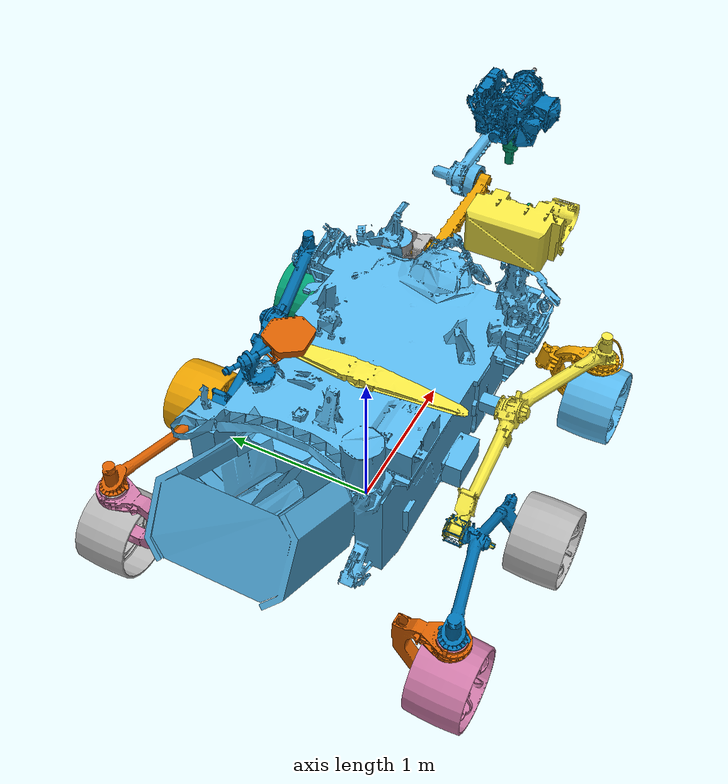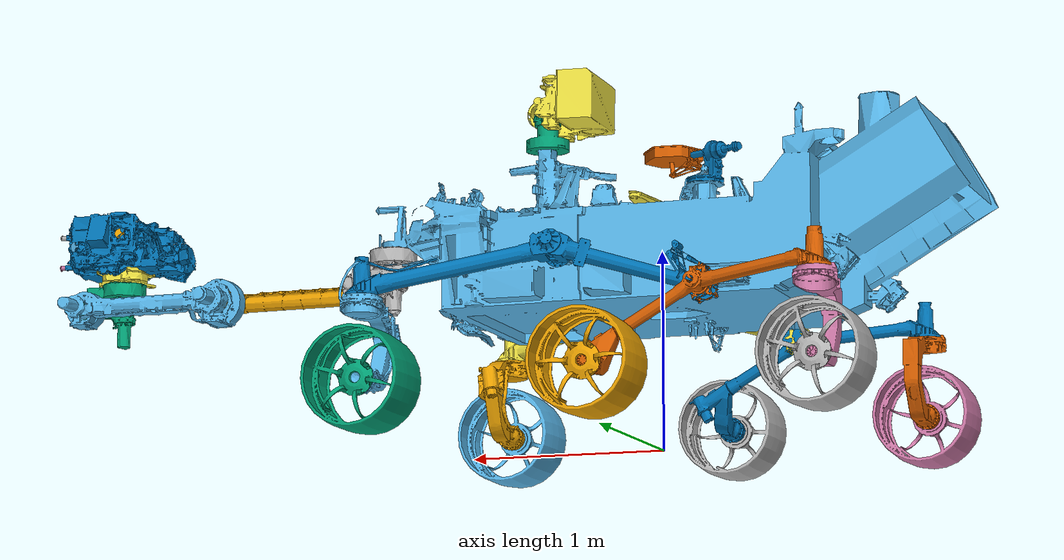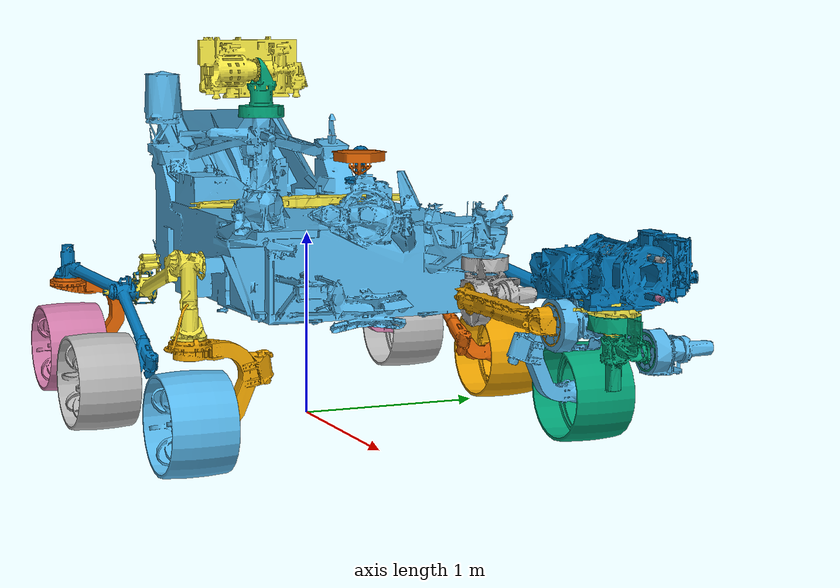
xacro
<?xml version="1.0" ?>

<!-- m2020.urdf.xacro : File that was mostly copied similar to the original, with small fixes such as changing .gtlif to .dae -->
<!-- m2020.gazebo.urdf.xacro: File that was vastly modified by TRACLabs to work with Gazebo -->
<robot name="perseverance" xmlns:xacro="http://www.ros.org/wiki/xacro">

  <!-- Set wheel MIDDLE links to be smaller, so they don't touch the floor (so we only use the front and back for diff driving)-->

  <xacro:include filename="$(find m2020_urdf_models)/urdf/gazebo/m2020.gazebo.component_macros.xacro"/>

  <xacro:property name="M_PI" value="3.14159"/>

  <xacro:property name="arm_joint_vel" value="0.6" /> <!-- original value: 1.79769e+308 -->
  <xacro:property name="head_joint_vel" value="1.0" /> <!-- original value: 1.79769e+308 -->
  <xacro:property name="arm_default_effort" value="100.0" /> <!-- original value: 1.79769e+308 -->
  <xacro:property name="stabilizer_default_vel" value="0.5"/> <!-- original value: 1.79769e+308 -->
  <xacro:property name="stabilizer_default_effort" value="50"/> <!-- original value: 1.79769e+308 -->

  <xacro:property name="arm_default_damping" value="250.0"/>
  <xacro:property name="arm_default_friction" value="10.0"/>
  <xacro:property name="default_mass" value="3.0" />
  <xacro:property name="default_ixx" value="0.2" />
  <xacro:property name="default_iyy" value="0.2" />
  <xacro:property name="default_izz" value="0.2" />

  <xacro:property name="link4_ixx" value="0.05" />
  <xacro:property name="link4_iyy" value="0.05" />
  <xacro:property name="link4_izz" value="0.05" />

  <xacro:property name="link5_ixx" value="0.05" />
  <xacro:property name="link5_iyy" value="0.05" />
  <xacro:property name="link5_izz" value="0.05" />

  <xacro:property name="stabilizer_mass" value="0.5"/>
  <xacro:property name="stabilizer_ixx" value="0.01" />
  <xacro:property name="stabilizer_iyy" value="0.01" />
  <xacro:property name="stabilizer_izz" value="0.01" />

  <xacro:property name="cap_mass" value="0.1"/>
  <xacro:property name="cap_ixx" value="0.005" />
  <xacro:property name="cap_iyy" value="0.005" />
  <xacro:property name="cap_izz" value="0.005" />

  <xacro:property name="turret_mass" value="1.0"/>
  <xacro:property name="turret_ixx" value="0.1" />
  <xacro:property name="turret_iyy" value="0.1" />
  <xacro:property name="turret_izz" value="0.1" />

  <!-- For link with no visual, no collision, just a frame -->
  <xacro:property name="tiny_mass" value="0.001"/>
  <xacro:property name="tiny_ixx" value="0.00001" />
  <xacro:property name="tiny_iyy" value="0.00001" />
  <xacro:property name="tiny_izz" value="0.00001" />

  <xacro:property name="head_damping" value="1.0"/>
  <xacro:property name="head_friction" value="10.0"/>
  <xacro:property name="head_effort" value="100.0" />

  <xacro:property name="wheel_mass" value="10.0" />
  <xacro:property name="wheel_ixx" value="${0.0254*wheel_mass}" />
  <xacro:property name="wheel_iyy" value="${0.0325*wheel_mass}" />
  <xacro:property name="wheel_izz" value="${0.0254*wheel_mass}" />

  <xacro:property name="wheel_effort" value="1000.0" />
  <xacro:property name="wheel_velocity" value="20.0" />

  <xacro:property name="wheel_radius" value="0.255" />
  <xacro:property name="wheel_width" value="0.331" />

	<link name="base_footprint"/>

	<link name="Body_Chassis">
		<inertial>
			<origin xyz="0.09002 0 -1.13338" rpy="0 -0 0"/>
			<mass value="100"/>
			<inertia ixx="0.714" ixy="0" ixz="0" iyy="2.348" iyz="0" izz="2.723"/>
		</inertial>
		<visual name="VisGeom_CHASSIS">
			<origin xyz="0.09002 0 -1.13338" rpy="0 -0 0"/>
			<geometry>
				<mesh filename="package://m2020_urdf_models/rover/meshes/CHASSIS.dae" scale="1 1 1"/>
			</geometry>
		</visual>
		<collision name="CollGeom_CHASSIS">
			<origin xyz="0.09002 0 -1.13338" rpy="0 -0 0"/>
			<geometry>
				<mesh filename="package://m2020_urdf_models/rover/meshes/low_res/CHASSIS_low_res.stl" scale="1 1 1"/>
			</geometry>
		</collision>
	</link>

	<link name="Body_MHS_DebrisShield">
	</link>
	<link name="Body_Differential">
		<inertial>
			<origin xyz="0 0 0" rpy="0 -0 0"/>
			<mass value="${default_mass}"/>
			<inertia ixx="${default_ixx}" ixy="0" ixz="0" iyy="${default_iyy}" iyz="0" izz="${default_izz}"/>
		</inertial>
		<visual name="VisGeom_CenterDifferential">
			<origin xyz="0.142 0 0" rpy="0 -0 0"/>
			<geometry>
				<mesh filename="package://m2020_urdf_models/rover/meshes/CenterDifferential.dae" scale="1 1 1"/>
			</geometry>
		</visual>
		<collision name="CollGeom_CenterDifferential">
			<origin xyz="0.142 0 0" rpy="0 -0 0"/>
			<geometry>
				<mesh filename="package://m2020_urdf_models/rover/meshes/low_res/CenterDifferential_low_res.stl" scale="1 1 1"/>
			</geometry>
		</collision>
	</link>
	<link name="Body_RockerLeft">
		<inertial>
			<origin xyz="0 0 0" rpy="0 -0 0"/>
			<mass value="${default_mass}"/>
			<inertia ixx="${default_ixx}" ixy="0" ixz="0" iyy="${default_iyy}" iyz="0" izz="${default_izz}"/>
		</inertial>
		<visual name="VisGeom_Left_Rocker">
			<origin xyz="-0.214 0.79959 -0.2405" rpy="0 -0 0"/>
			<geometry>
				<mesh filename="package://m2020_urdf_models/rover/meshes/Left_Rocker.dae" scale="1 1 1"/>
			</geometry>
		</visual>
		<collision name="CollGeom_Left_Rocker">
			<origin xyz="-0.214 0.79959 -0.2405" rpy="0 -0 0"/>
			<geometry>
				<mesh filename="package://m2020_urdf_models/rover/meshes/low_res/Left_Rocker_low_res.stl" scale="1 1 1"/>
			</geometry>
		</collision>
	</link>
	<link name="Body_BogieLeft">
		<inertial>
			<origin xyz="0.0 0 0" rpy="0 -0 0"/>
			<mass value="${default_mass}"/>
			<inertia ixx="${default_ixx}" ixy="0" ixz="0" iyy="${default_iyy}" iyz="0" izz="${default_izz}"/>
		</inertial>
		<visual name="VisGeom_Left_Bogie">
			<origin xyz="0.54 0.91959 -0.4705" rpy="0 -0 0"/>
			<geometry>
				<mesh filename="package://m2020_urdf_models/rover/meshes/Left_Bogie.dae" scale="1 1 1"/>
			</geometry>
		</visual>
		<collision name="CollGeom_Left_Bogie">
			<origin xyz="0.54 0.91959 -0.4705" rpy="0 -0 0"/>
			<geometry>
				<mesh filename="package://m2020_urdf_models/rover/meshes/low_res/Left_Bogie_low_res.stl" scale="1 1 1"/>
			</geometry>
		</collision>
	</link>
	<link name="Body_SteerLeftRear">
		<inertial>
			<origin xyz="0 0 0" rpy="0 -0 0"/>
			<mass value="${default_mass}"/>
			<inertia ixx="${default_ixx}" ixy="0" ixz="0" iyy="${default_iyy}" iyz="0" izz="${default_izz}"/>
		</inertial>
		<visual name="VisGeom_Steer_LeftRear">
			<origin xyz="1.165 1.0625 -0.8705" rpy="0 -0 0"/>
			<geometry>
				<mesh filename="package://m2020_urdf_models/rover/meshes/Steer_LeftRear.dae" scale="1 1 1"/>
			</geometry>
		</visual>
		<collision name="CollGeom_Steer_LeftRear">
			<origin xyz="1.165 1.0625 -0.8705" rpy="0 -0 0"/>
			<geometry>
				<mesh filename="package://m2020_urdf_models/rover/meshes/low_res/Steer_LeftRear_low_res.stl" scale="1 1 1"/>
			</geometry>
		</collision>
	</link>
	<link name="Body_WheelLeftRear">
		<inertial>
			<origin xyz="0 0 0" rpy="0 0 0"/>
			<mass value="${wheel_mass}"/>
			<inertia ixx="${wheel_ixx}" ixy="0" ixz="0" iyy="${wheel_iyy}" iyz="0" izz="${wheel_izz}"/>
		</inertial>
		<visual name="VisGeom_Wheel_LeftRear">
			<origin xyz="1.165 1.0625 -0.8705" rpy="0 -0 0"/>
			<geometry>
				<mesh filename="package://m2020_urdf_models/rover/meshes/Wheel_LeftRear.dae" scale="1 1 1"/>
			</geometry>
		</visual>
		<collision name="ColGeom_Wheel_LeftRear">
          <origin xyz="0 0 0" rpy="${M_PI/2} 0 0" />
          <geometry>
            <cylinder radius="${wheel_radius-0.0001}" length="${wheel_width}"/>
          </geometry>
		</collision>
	</link>
	<link name="Body_WheelLeftMiddle">
		<inertial>
			<origin xyz="0 0 0" rpy="0 -0 0"/>
			<mass value="${wheel_mass}"/>
			<inertia ixx="${wheel_ixx}" ixy="0" ixz="0" iyy="${wheel_iyy}" iyz="0" izz="${wheel_izz}"/>
		</inertial>
		<visual name="VisGeom_Wheel_LeftMiddle">
			<origin xyz="0.09002 1.1845 -0.8705" rpy="0 -0 0"/>
			<geometry>
				<mesh filename="package://m2020_urdf_models/rover/meshes/Wheel_LeftMiddle.dae" scale="1 1 1"/>
			</geometry>
		</visual>
		<collision name="ColGeom_Wheel_LeftMiddle">
          <origin xyz="0 0 0" rpy="${M_PI/2} 0 0" />
          <geometry>
            <cylinder radius="${wheel_radius-0.0001}" length="${wheel_width}"/>
          </geometry>
		</collision>
	</link>
	<link name="Body_SteerLeftFront">
		<inertial>
			<origin xyz="-1.095 1.0625 -0.8705" rpy="0 -0 0"/>
			<mass value="${default_mass}"/>
			<inertia ixx="${default_ixx}" ixy="0" ixz="0" iyy="${default_iyy}" iyz="0" izz="${default_izz}"/>
		</inertial>
		<visual name="VisGeom_Steer_LeftFront">
			<origin xyz="-1.095 1.0625 -0.8705" rpy="0 -0 0"/>
			<geometry>
				<mesh filename="package://m2020_urdf_models/rover/meshes/Steer_LeftFront.dae" scale="1 1 1"/>
			</geometry>
		</visual>
		<collision name="CollGeom_Steer_LeftFront">
			<origin xyz="-1.095 1.0625 -0.8705" rpy="0 -0 0"/>
			<geometry>
				<mesh filename="package://m2020_urdf_models/rover/meshes/low_res/Steer_LeftFront_low_res.stl" scale="1 1 1"/>
			</geometry>
		</collision>
	</link>
	<link name="Body_WheelLeftFront">
		<inertial>
			<origin xyz="0 0 0" rpy="0 -0 0"/>
			<mass value="${wheel_mass}"/>
			<inertia ixx="${wheel_ixx}" ixy="0" ixz="0" iyy="${wheel_iyy}" iyz="0" izz="${wheel_izz}"/>
		</inertial>
		<visual name="VisGeom_Wheel_LeftFront">
			<origin xyz="-1.095 1.0625 -0.8705" rpy="0 -0 0"/>
			<geometry>
				<mesh filename="package://m2020_urdf_models/rover/meshes/Wheel_LeftFront.dae" scale="1 1 1"/>
			</geometry>
		</visual>
		<collision name="ColGeom_Wheel_LeftFront">
          <origin xyz="0 0 0" rpy="${M_PI/2} 0 0" />
          <geometry>
            <cylinder radius="${wheel_radius-0.0001}" length="${wheel_width}"/>
          </geometry>
		</collision>
	</link>
	<link name="Body_RockerRight">
		<inertial>
			<origin xyz="0 0 0" rpy="0 0 0"/>
			<mass value="${default_mass}"/>
			<inertia ixx="${default_ixx}" ixy="0" ixz="0" iyy="${default_iyy}" iyz="0" izz="${default_izz}"/>
		</inertial>
		<visual name="VisGeom_Right_Rocker">
			<origin xyz="-0.214 -0.79959 -0.2405" rpy="0 -0 0"/>
			<geometry>
				<mesh filename="package://m2020_urdf_models/rover/meshes/Right_Rocker.dae" scale="1 1 1"/>
			</geometry>
		</visual>
		<collision name="ColGeom_Right_Rocker">
			<origin xyz="-0.214 -0.79959 -0.2405" rpy="0 -0 0"/>
			<geometry>
				<mesh filename="package://m2020_urdf_models/rover/meshes/low_res/Right_Rocker_low_res.stl" scale="1 1 1"/>
			</geometry>
		</collision>

	</link>
	<link name="Body_BogieRight">
		<inertial>
			<origin xyz="0 0 0" rpy="0 0 0"/>
			<mass value="${default_mass}"/>
			<inertia ixx="${default_ixx}" ixy="0" ixz="0" iyy="${default_iyy}" iyz="0" izz="${default_izz}"/>
		</inertial>
		<visual name="VisGeom_Right_Bogie">
			<origin xyz="0.54 -0.91959 -0.4705" rpy="0 -0 0"/>
			<geometry>
				<mesh filename="package://m2020_urdf_models/rover/meshes/Right_Bogie.dae" scale="1 1 1"/>
			</geometry>
		</visual>
		<collision name="ColGeom_Right_Bogie">
			<origin xyz="0.54 -0.91959 -0.4705" rpy="0 -0 0"/>
			<geometry>
				<mesh filename="package://m2020_urdf_models/rover/meshes/low_res/Right_Bogie_low_res.stl" scale="1 1 1"/>
			</geometry>
		</collision>
	</link>
	<link name="Body_SteerRightRear">
		<inertial>
			<origin xyz="0 0 0" rpy="0 0 0"/>
			<mass value="${default_mass}"/>
			<inertia ixx="${default_ixx}" ixy="0" ixz="0" iyy="${default_iyy}" iyz="0" izz="${default_izz}"/>
		</inertial>
		<visual name="VisGeom_Steer_RightRear">
			<origin xyz="1.165 -1.0625 -0.8705" rpy="0 -0 0"/>
			<geometry>
				<mesh filename="package://m2020_urdf_models/rover/meshes/Steer_RightRear.dae" scale="1 1 1"/>
			</geometry>
		</visual>
		<collision name="CollGeom_Steer_RightRear">
			<origin xyz="1.165 -1.0625 -0.8705" rpy="0 -0 0"/>
			<geometry>
				<mesh filename="package://m2020_urdf_models/rover/meshes/low_res/Steer_RightRear_low_res.stl" scale="1 1 1"/>
			</geometry>
		</collision>
	</link>
	<link name="Body_WheelRightRear">
		<inertial>
			<origin xyz="0 0 0" rpy="0 -0 0"/>
			<mass value="${wheel_mass}"/>
			<inertia ixx="${wheel_ixx}" ixy="0" ixz="0" iyy="${wheel_iyy}" iyz="0" izz="${wheel_izz}"/>
		</inertial>
		<visual name="VisGeom_Wheel_RightRear">
			<origin xyz="1.165 -1.0625 -0.8705" rpy="0 -0 0"/>
			<geometry>
				<mesh filename="package://m2020_urdf_models/rover/meshes/Wheel_RightRear.dae" scale="1 1 1"/>
			</geometry>
		</visual>
		<collision name="ColGeom_Wheel_RightRear">
          <origin xyz="0 0 0" rpy="${M_PI/2} 0 0" />
          <geometry>
            <cylinder radius="${wheel_radius-0.0001}" length="${wheel_width}"/>
          </geometry>
		</collision>
	</link>
	<link name="Body_WheelRightMiddle">
		<inertial>
			<origin xyz="0 0 0" rpy="0 -0 0"/>
			<mass value="${wheel_mass}"/>
			<inertia ixx="${wheel_ixx}" ixy="0" ixz="0" iyy="${wheel_iyy}" iyz="0" izz="${wheel_izz}"/>
		</inertial>
		<visual name="VisGeom_Wheel_RightMiddle">
			<origin xyz="0.09002 -1.1845 -0.8705" rpy="0 -0 0"/>
			<geometry>
				<mesh filename="package://m2020_urdf_models/rover/meshes/Wheel_RightMiddle.dae" scale="1 1 1"/>
			</geometry>
		</visual>
		<collision name="ColGeom_Wheel_RightMiddle">
          <origin xyz="0 0 0" rpy="${M_PI/2} 0 0" />
          <geometry>
            <cylinder radius="${wheel_radius-0.0001}" length="${wheel_width}"/>
          </geometry>
		</collision>
	</link>
	<link name="Body_SteerRightFront">
		<inertial>
			<origin xyz="0 0 0" rpy="0 -0 0"/>
			<mass value="${default_mass}"/>
			<inertia ixx="${default_ixx}" ixy="0" ixz="0" iyy="${default_iyy}" iyz="0" izz="${default_izz}"/>
		</inertial>
		<visual name="VisGeom_Steer_RightFront">
			<origin xyz="-1.095 -1.0625 -0.8705" rpy="0 -0 0"/>
			<geometry>
				<mesh filename="package://m2020_urdf_models/rover/meshes/Steer_RightFront.dae" scale="1 1 1"/>
			</geometry>
		</visual>
		<collision name="CollGeom_Steer_RightFront">
			<origin xyz="-1.095 -1.0625 -0.8705" rpy="0 -0 0"/>
			<geometry>
				<mesh filename="package://m2020_urdf_models/rover/meshes/low_res/Steer_RightFront_low_res.stl" scale="1 1 1"/>
			</geometry>
		</collision>
	</link>
	<link name="Body_WheelRightFront">
		<inertial>
			<origin xyz="0 0 0" rpy="0 -0 0"/>
			<mass value="${wheel_mass}"/>
			<inertia ixx="${wheel_ixx}" ixy="0" ixz="0" iyy="${wheel_iyy}" iyz="0" izz="${wheel_izz}"/>
		</inertial>
		<visual name="VisGeom_Wheel_RightFront">
			<origin xyz="-1.095 -1.0625 -0.8705" rpy="0 -0 0"/>
			<geometry>
				<mesh filename="package://m2020_urdf_models/rover/meshes/Wheel_RightFront.dae" scale="1 1 1"/>
			</geometry>
		</visual>
		<collision name="ColGeom_Wheel_RightFront">
          <origin xyz="0 0 0" rpy="${M_PI/2} 0 0" />
          <geometry>
            <cylinder radius="${wheel_radius-0.0001}" length="${wheel_width}"/>
          </geometry>
		</collision>
	</link>
	<link name="Body_RSM_AZ">
		<inertial>
			<origin xyz="0 0 0" rpy="0 -0 0"/>
			<mass value="${default_mass}"/>
			<inertia ixx="${default_ixx}" ixy="0" ixz="0" iyy="${default_iyy}" iyz="0" izz="${default_izz}"/>
		</inertial>
		<visual name="VisGeom_RSM">
			<origin xyz="-0.714017 -0.559028 0.78589" rpy="0 -0 0"/>
			<geometry>
				<mesh filename="package://m2020_urdf_models/rover/meshes/RSM.dae" scale="1 1 1"/>
			</geometry>
		</visual>
		<collision name="CollGeom_RSM">
			<origin xyz="-0.714017 -0.559028 0.78589" rpy="0 -0 0"/>
			<geometry>
				<mesh filename="package://m2020_urdf_models/rover/meshes/low_res/RSM_low_res.stl" scale="1 1 1"/>
			</geometry>
		</collision>
	</link>
	<link name="Body_RSM_EL">
		<inertial>
			<origin xyz="0 0 0" rpy="0 -0 0"/>
			<mass value="${default_mass}"/>
			<inertia ixx="${default_ixx}" ixy="0" ixz="0" iyy="${default_iyy}" iyz="0" izz="${default_izz}"/>
		</inertial>
		<visual name="VisGeom_RSM_HEAD">
			<origin xyz="-0.714017 -0.559028 0.78589" rpy="0 -0 0"/>
			<geometry>
				<mesh filename="package://m2020_urdf_models/rover/meshes/RSM_Head.dae" scale="1 1 1"/>
			</geometry>
		</visual>
		<collision name="CollGeom_RSM_HEAD">
			<origin xyz="-0.714017 -0.559028 0.78589" rpy="0 -0 0"/>
			<geometry>
				<mesh filename="package://m2020_urdf_models/rover/meshes/low_res/RSM_Head_low_res.stl" scale="1 1 1"/>
			</geometry>
		</collision>
	</link>
	<link name="Body_HGA_AZ">
		<inertial>
			<origin xyz="0 0 0" rpy="0 0 0"/>
			<mass value="${default_mass}"/>
			<inertia ixx="${default_ixx}" ixy="0" ixz="0" iyy="${default_iyy}" iyz="0" izz="${default_izz}"/>
		</inertial>
		<visual name="VisGeom_HGA_AZ">
			<origin xyz="0.46 0.475 -0.0005" rpy="0 -0 0"/>
			<geometry>
				<mesh filename="package://m2020_urdf_models/rover/meshes/HGA_AZ.dae" scale="1 1 1"/>
			</geometry>
		</visual>
		<collision name="CollGeom_HGA_AZ">
			<origin xyz="0.46 0.475 -0.0005" rpy="0 -0 0"/>
			<geometry>
				<mesh filename="package://m2020_urdf_models/rover/meshes/low_res/HGA_AZ_low_res.stl" scale="1 1 1"/>
			</geometry>
		</collision>
	</link>
	<link name="Body_HGA_EL">
		<inertial>
			<origin xyz="0 0 0" rpy="0 0 0"/>
			<mass value="${default_mass}"/>
			<inertia ixx="${default_ixx}" ixy="0" ixz="0" iyy="${default_iyy}" iyz="0" izz="${default_izz}"/>
		</inertial>
		<visual name="VisGeom_HGA_EL">
			<origin xyz="0.46 0.475 0.2475" rpy="0 -0 0"/>
			<geometry>
				<mesh filename="package://m2020_urdf_models/rover/meshes/HGA_EL.dae" scale="1 1 1"/>
			</geometry>
		</visual>
		<collision name="CollGeom_HGA_EL">
			<origin xyz="0.46 0.475 0.2475" rpy="0 -0 0"/>
			<geometry>
				<mesh filename="package://m2020_urdf_models/rover/meshes/low_res/HGA_EL_low_res.stl" scale="1 1 1"/>
			</geometry>
		</collision>
	</link>
	<link name="Body_RA_Base">
		<inertial>
			<origin xyz="0 0 0" rpy="0 0 0"/>
			<mass value="${tiny_mass}"/>
			<inertia ixx="${tiny_ixx}" ixy="0" ixz="0" iyy="${tiny_iyy}" iyz="0" izz="${tiny_izz}"/>
		</inertial>
	</link>
	<link name="Body_RA_Link1">
		<inertial>
			<origin xyz="0 0 0" rpy="0 0 0"/>
			<mass value="${default_mass}"/>
			<inertia ixx="${default_ixx}" ixy="0" ixz="0" iyy="${default_iyy}" iyz="0" izz="${default_izz}"/>
		</inertial>
		<visual name="VisGeom_Arm_LINK_1">
			<origin xyz="-1.1756 0.4515 -0.3116" rpy="0 -0 0"/>
			<geometry>
				<mesh filename="package://m2020_urdf_models/rover/meshes/Arm_LINK_1.dae" scale="1 1 1"/>
			</geometry>
		</visual>
		<collision name="ColGeom_Arm_LINK_1">
			<origin xyz="-1.1756 0.4515 -0.3116" rpy="0 -0 0"/>
			<geometry>
				<mesh filename="package://m2020_urdf_models/rover/meshes/low_res/Arm_LINK_1_low_res.stl" scale="1 1 1"/>
			</geometry>
		</collision>
	</link>
	<link name="Body_RA_Link2">
		<inertial>
			<origin xyz="0 0 0" rpy="0 -0 0"/>
			<mass value="${default_mass}"/>
			<inertia ixx="${default_ixx}" ixy="0" ixz="0" iyy="${default_iyy}" iyz="0" izz="${default_izz}"/>
		</inertial>
		<visual name="VisGeom_Arm_LINK_2">
			<origin xyz="-1.3416 0.4515 -0.3116" rpy="0 -0 0"/>
			<geometry>
				<mesh filename="package://m2020_urdf_models/rover/meshes/Arm_LINK_2.dae" scale="1 1 1"/>
			</geometry>
		</visual>
		<collision name="ColGeom_Arm_LINK_2">
			<origin xyz="-1.3416 0.4515 -0.3116" rpy="0 -0 0"/>
			<geometry>
				<mesh filename="package://m2020_urdf_models/rover/meshes/low_res/Arm_LINK_2_low_res.stl" scale="1 1 1"/>
			</geometry>
		</collision>
	</link>
	<link name="Body_RA_Link3">
		<inertial>
			<origin xyz="0 0 0" rpy="0 0 0"/>
			<mass value="${default_mass}"/>
			<inertia ixx="0.1" ixy="0" ixz="0" iyy="0.1" iyz="0" izz="0.1"/>
		</inertial>
		<visual name="VisGeom_Arm_LINK_3">
			<origin xyz="-2.161 0.4515 -0.3116" rpy="0 -0 0"/>
			<geometry>
				<mesh filename="package://m2020_urdf_models/rover/meshes/Arm_LINK_3.dae" scale="1 1 1"/>
			</geometry>
		</visual>
		<collision name="ColGeom_Arm_LINK_3">
			<origin xyz="-2.161 0.4515 -0.3116" rpy="0 -0 0"/>
			<geometry>
				<mesh filename="package://m2020_urdf_models/rover/meshes/low_res/Arm_LINK_3_low_res.stl" scale="1 1 1"/>
			</geometry>
		</collision>
	</link>
	<link name="Body_RA_Link4">
		<inertial>
			<origin xyz="0 0 0" rpy="0 0 0"/>
			<mass value="${default_mass}"/>
			<inertia ixx="${link4_ixx}" ixy="0" ixz="0" iyy="${link4_iyy}" iyz="0" izz="${link4_izz}"/>
		</inertial>
		<visual name="VisGeom_Arm_LINK_4">
			<origin xyz="-2.9143 0.4515 -0.3116" rpy="0 -0 0"/>
			<geometry>
				<mesh filename="package://m2020_urdf_models/rover/meshes/Arm_LINK_4.dae" scale="1 1 1"/>
			</geometry>
		</visual>
		<collision name="ColGeom_Arm_LINK_4">
			<origin xyz="-2.9143 0.4515 -0.3116" rpy="0 -0 0"/>
			<geometry>
				<mesh filename="package://m2020_urdf_models/rover/meshes/low_res/Arm_LINK_4_low_res.stl" scale="1 1 1"/>
			</geometry>
		</collision>
	</link>
	<link name="Body_RA_Link5">
	    <inertial>
			<origin xyz="0 0 0" rpy="0 0 0"/>
			<mass value="${default_mass}"/>
			<inertia ixx="${link5_ixx}" ixy="0" ixz="0" iyy="${link5_iyy}" iyz="0" izz="${link5_izz}"/>
		</inertial>
		<visual name="VisGeom_Arm_LINK_5">
			<origin xyz="-2.7386 0.2724 -0.3116" rpy="0 -0 0"/>
			<geometry>
				<mesh filename="package://m2020_urdf_models/rover/meshes/Arm_LINK_5.dae" scale="1 1 1"/>
			</geometry>
		</visual>
		<collision name="CollGeom_Arm_LINK_5">
			<origin xyz="-2.7386 0.2724 -0.3116" rpy="0 -0 0"/>
			<geometry>
				<mesh filename="package://m2020_urdf_models/rover/meshes/low_res/Arm_LINK_5_low_res.stl" scale="1 1 1"/>
			</geometry>
		</collision>
	</link>
	<link name="Body_Turret">
		<inertial>
			<origin xyz="0 0 0" rpy="0 0 0"/>
			<mass value="${turret_mass}"/>
			<inertia ixx="${turret_ixx}" ixy="0" ixz="0" iyy="${turret_iyy}" iyz="0" izz="${turret_izz}"/>
		</inertial>
		<visual name="VisGeom_Turret">
			<origin xyz="0 0 0" rpy="0 -0 0"/>
			<geometry>
				<mesh filename="package://m2020_urdf_models/rover/meshes/Turret.dae" scale="1 1 1"/>
			</geometry>
		</visual>
		<collision name="ColGeom_Turret">
			<origin xyz="0 0 0" rpy="0 -0 0"/>
			<geometry>
				<mesh filename="package://m2020_urdf_models/rover/meshes/low_res/Turret_low_res.stl" scale="1 1 1"/>
			</geometry>
		</collision>
	</link>
	<link name="Body_CorerFeed">
		<!-- Commented out TRACLabs -->
		<!-- Commented out TRACLabs -->
	</link>
	<link name="Body_StabilizerFar">
		<inertial>
			<origin xyz="0 0 0" rpy="0 0 0"/>
			<mass value="${stabilizer_mass}"/>
			<inertia ixx="${stabilizer_ixx}" ixy="0" ixz="0" iyy="${stabilizer_iyy}" iyz="0" izz="${stabilizer_izz}"/>
		</inertial>
		<visual name="VisGeom_StabilizerFar">
			<origin xyz="0.208499 -5.1e-05 -3.438e-05" rpy="0 -0 0"/>
			<geometry>
				<mesh filename="package://m2020_urdf_models/rover/meshes/StabilizerFarInTurret.dae" scale="1 1 1"/>
			</geometry>
		</visual>
		<collision name="CollGeom_StabilizerFar">
			<origin xyz="0.208499 -5.1e-05 -3.438e-05" rpy="0 -0 0"/>
			<geometry>
				<mesh filename="package://m2020_urdf_models/rover/meshes/low_res/StabilizerFarInTurret_low_res.stl" scale="1 1 1"/>
			</geometry>
		</collision>
	</link>
	<link name="Body_StabilizerNear">
		<inertial>
			<origin xyz="0 0 0" rpy="0 -0 0"/>
			<mass value="${stabilizer_mass}"/>
			<inertia ixx="${stabilizer_ixx}" ixy="0" ixz="0" iyy="${stabilizer_iyy}" iyz="0" izz="${stabilizer_izz}"/>
		</inertial>
		<visual name="VisGeom_StabilizerNear">
			<origin xyz="0.208499 -5.1e-05 -3.438e-05" rpy="0 -0 0"/>
			<geometry>
				<mesh filename="package://m2020_urdf_models/rover/meshes/StabilizerNearInTurret.dae" scale="1 1 1"/>
			</geometry>
		</visual>
		<collision name="CollGeom_StabilizerNear">
			<origin xyz="0.208499 -5.1e-05 -3.438e-05" rpy="0 -0 0"/>
			<geometry>
				<mesh filename="package://m2020_urdf_models/rover/meshes/low_res/StabilizerNearInTurret_low_res.stl" scale="1 1 1"/>
			</geometry>
		</collision>
	</link>
	<link name="Body_WATSON_Cap">
		<inertial>
			<origin xyz="0 0 0" rpy="0 0 0"/>
			<mass value="${cap_mass}"/>
			<inertia ixx="${cap_ixx}" ixy="0" ixz="0" iyy="${cap_iyy}" iyz="0" izz="${cap_izz}"/>
		</inertial>
		<visual name="VisGeom_WATSON_Cap">
			<origin xyz="-2.6025 0.581204 0.0309103" rpy="0 -0 0"/>
			<geometry>
				<mesh filename="package://m2020_urdf_models/rover/meshes/WATSON_Camera_Cap.dae" scale="1 1 1"/>
			</geometry>
		</visual>
		<collision name="CollGeom_WATSON_Cap">
			<origin xyz="-2.6025 0.581204 0.0309103" rpy="0 -0 0"/>
			<geometry>
				<mesh filename="package://m2020_urdf_models/rover/meshes/low_res/WATSON_Camera_Cap_low_res.stl" scale="1 1 1"/>
			</geometry>
		</collision>
	</link>
	<link name="Body_SHERLOC_Cap">
		<inertial>
			<origin xyz="0 0 0" rpy="0 0 0"/>
			<mass value="${cap_mass}"/>
			<inertia ixx="${cap_ixx}" ixy="0" ixz="0" iyy="${cap_iyy}" iyz="0" izz="${cap_izz}"/>
		</inertial>
		<visual name="VisGeom_SHERLOC_Cap">
			<origin xyz="-2.86084 0.58439 -0.0124626" rpy="0 -0 0"/>
			<geometry>
				<mesh filename="package://m2020_urdf_models/rover/meshes/ContextImager_Cap.dae" scale="1 1 1"/>
			</geometry>
		</visual>
		<collision name="CollGeom_SHERLOC_Cap">
			<origin xyz="-2.86084 0.58439 -0.0124626" rpy="0 -0 0"/>
			<geometry>
				<mesh filename="package://m2020_urdf_models/rover/meshes/low_res/ContextImager_Cap_low_res.stl" scale="1 1 1"/>
			</geometry>
		</collision>
	</link>
	<link name="Frame_RNAV"/>
	<link name="Frame_RMECH"/>
	<link name="Frame_FHCB"/>
	<link name="Frame_FHC1"/>
	<link name="Frame_FHC2"/>
	<link name="Frame_FHC3"/>
	<link name="Frame_FHC4"/>
	<link name="Frame_FHC1_FOV"/>
	<link name="Frame_FHC2_FOV"/>
	<link name="Frame_FHC3_FOV"/>
	<link name="Frame_FHC4_FOV"/>
	<link name="Frame_RHC1"/>
	<link name="Frame_RHC2"/>
	<link name="Frame_RHC1_FOV"/>
	<link name="Frame_RHC2_FOV"/>
	<link name="Frame_ATS1"/>
	<link name="Frame_ATS2"/>
	<link name="Frame_ATS3"/>
	<link name="Frame_ATS4"/>
	<link name="Frame_ATS5"/>
	<link name="Frame_HS"/>
	<link name="Frame_ICU"/>
	<link name="Frame_RDS"/>
	<link name="Frame_TIRS"/>
	<link name="Frame_WS1"/>
	<link name="Frame_WS2"/>
	<link name="Frame_MOXIE"/>
	<link name="Frame_MI"/>
	<link name="Frame_MAZ"/>
	<link name="Frame_MEL"/>
	<link name="Frame_SCI"/>
	<link name="Frame_SCRMI"/>
	<link name="Frame_SCLIBS"/>
	<link name="Frame_SCIR"/>
	<link name="Frame_MCL"/>
	<link name="Frame_MCR"/>
	<link name="Frame_NCL"/>
	<link name="Frame_NCR"/>
	<link name="Frame_NCL_FOV"/>
	<link name="Frame_NCR_FOV"/>
	<link name="Frame_ROCKER_L"/>
	<link name="Frame_ROCKER_R"/>
	<link name="Frame_BOGIE_L"/>
	<link name="Frame_BOGIE_R"/>
	<link name="Frame_DIFF"/>
	<link name="Frame_STEER_LF"/>
	<link name="Frame_STEER_LR"/>
	<link name="Frame_STEER_RF"/>
	<link name="Frame_STEER_RR"/>
	<link name="Frame_WHEEL_LF"/>
	<link name="Frame_WHEEL_LM"/>
	<link name="Frame_WHEEL_LR"/>
	<link name="Frame_WHEEL_RF"/>
	<link name="Frame_WHEEL_RM"/>
	<link name="Frame_WHEEL_RR"/>
	<link name="Frame_RIMUA"/>
	<link name="Frame_RIMUB"/>
	<link name="Frame_RIMFAX"/>
	<link name="Frame_HGAS"/>
	<link name="Frame_HGAG"/>
	<link name="Frame_ANT"/>
	<link name="Frame_RA_BASE"/>
	<link name="Frame_RA1"/>
	<link name="Frame_RA2"/>
	<link name="Frame_RA3"/>
	<link name="Frame_RA4"/>
	<link name="Frame_RA5"/>
	<link name="Frame_RA6"/>
	<link name="Frame_TURRET"/>
	<link name="Frame_DOCKING_POST"/>
	<link name="Frame_DRILL"/>
	<link name="Frame_FCS"/>
	<link name="Frame_GDRT"/>
	<link name="Frame_PIXL"/>
	<link name="Frame_SHERLOC"/>
	<link name="Frame_WATSON"/>
	<link name="Frame_CAL_MC1"/>
	<link name="Frame_CAL_MC2"/>
	<link name="Frame_CAL_SC"/>
	<link name="Frame_CAL_PIXL"/>
	<link name="Frame_CAL_SHERLOC"/>

    <!-- *************** Joints ************ -->

	<joint name="joint_footprint" type="fixed">
		<origin xyz="0 0 0" rpy="3.1416 0 0"/>
		<parent link="base_footprint"/>
		<child link="Body_Chassis"/>
	</joint>

	<joint name="Joint_MHS_DebrisShield" type="fixed"> <!-- TRACLABS Note: This was floating. We set it to fixed for easy sim-->
		<origin xyz="0.09002 0 -1.13338" rpy="0 -0 0"/>
		<parent link="Body_Chassis"/>
		<child link="Body_MHS_DebrisShield"/>
	</joint>
	<joint name="CENTER_DIFFERENTIAL" type="fixed"> <!-- TRACLabs Gazebo test hack -->
		<origin xyz="-0.05198 0 -1.13338" rpy="0 -0 0"/>
		<parent link="Body_Chassis"/>
		<child link="Body_Differential"/>
		<axis xyz="0 0 1"/>
		<limit lower="-1.79769e+308" upper="1.79769e+308" effort="1.79769e+308" velocity="1.79769e+308"/>
	</joint>
	<joint name="LEFT_DIFFERENTIAL" type="fixed"> <!-- TRACLabs Gazebo test hack -->
		<origin xyz="0.30402 -0.79959 -0.89288" rpy="0 -0 0"/>
		<parent link="Body_Chassis"/>
		<child link="Body_RockerLeft"/>
		<axis xyz="0 1 0"/>
		<limit lower="-1.79769e+308" upper="1.79769e+308" effort="1.79769e+308" velocity="1.79769e+308"/>
	</joint>
	<joint name="LEFT_BOGIE" type="fixed"> <!-- TRACLabs Gazebo test hack -->
		<origin xyz="-0.754 -0.12 0.23" rpy="0 -0 0"/>
		<parent link="Body_RockerLeft"/>
		<child link="Body_BogieLeft"/>
		<axis xyz="0 1 0"/>
		<limit lower="-1.79769e+308" upper="1.79769e+308" effort="1.79769e+308" velocity="1.79769e+308"/>
	</joint>
	<joint name="LR_STEER" type="fixed"> <!-- TRACLabs Gazebo test hack -->
		<origin xyz="-0.625 -0.14291 0.4" rpy="0 -0 0"/>
		<parent link="Body_BogieLeft"/>
		<child link="Body_SteerLeftRear"/>
		<axis xyz="0 0 1"/>
		<limit lower="-1.79769e+308" upper="1.79769e+308" effort="1.79769e+308" velocity="1.79769e+308"/>
	</joint>
	<joint name="LR_DRIVE" type="continuous"> <!-- revolute TRACLabs Gazebo test hack -->
		<origin xyz="0 0 0" rpy="0 -0 0"/>
		<parent link="Body_SteerLeftRear"/>
		<child link="Body_WheelLeftRear"/>
		<axis xyz="0 -1 0"/>
		<limit effort="${wheel_effort}" velocity="${wheel_velocity}"/>
		<dynamics damping="0.0" friction="0.0" />
	</joint>
	<joint name="LM_DRIVE" type="continuous"> <!-- revolute TRACLabs Gazebo test hack -->
		<origin xyz="0.44998 -0.26491 0.4" rpy="0 -0 0"/>
		<parent link="Body_BogieLeft"/>
		<child link="Body_WheelLeftMiddle"/>
		<axis xyz="0 -1 0"/>
		<limit effort="${wheel_effort}" velocity="${wheel_velocity}"/>
		<dynamics damping="0.0" friction="0.0" />
	</joint>
	<joint name="LF_STEER" type="fixed"> <!-- TRACLabs Gazebo test hack -->
		<origin xyz="0.881 -0.26291 0.63" rpy="0 -0 0"/>
		<parent link="Body_RockerLeft"/>
		<child link="Body_SteerLeftFront"/>
		<axis xyz="0 0 1"/>
		<limit lower="-1.79769e+308" upper="1.79769e+308" effort="1.79769e+308" velocity="1.79769e+308"/>
	</joint>
	<joint name="LF_DRIVE" type="continuous"> <!-- revolute TRACLabs Gazebo test hack -->
		<origin xyz="0 0 0" rpy="0 -0 0"/>
		<parent link="Body_SteerLeftFront"/>
		<child link="Body_WheelLeftFront"/>
		<axis xyz="0 -1 0"/>
		<limit effort="${wheel_effort}" velocity="${wheel_velocity}"/>
		<dynamics damping="0.0" friction="0.0" />
	</joint>
	<joint name="RIGHT_DIFFERENTIAL" type="fixed"> <!-- TRACLabs Gazebo test hack -->
		<origin xyz="0.30402 0.79959 -0.89288" rpy="0 -0 0"/>
		<parent link="Body_Chassis"/>
		<child link="Body_RockerRight"/>
		<axis xyz="0 1 0"/>
		<limit lower="-1.79769e+308" upper="1.79769e+308" effort="1.79769e+308" velocity="1.79769e+308"/>
	</joint>
	<joint name="RIGHT_BOGIE" type="fixed"> <!-- TRACLabs Gazebo test hack -->
		<origin xyz="-0.754 0.12 0.23" rpy="0 -0 0"/>
		<parent link="Body_RockerRight"/>
		<child link="Body_BogieRight"/>
		<axis xyz="0 1 0"/>
		<limit lower="-1.79769e+308" upper="1.79769e+308" effort="1.79769e+308" velocity="1.79769e+308"/>
	</joint>
	<joint name="RR_STEER" type="fixed"> <!-- revolute TRACLabs Gazebo test hack -->
		<origin xyz="-0.625 0.14291 0.4" rpy="0 -0 0"/>
		<parent link="Body_BogieRight"/>
		<child link="Body_SteerRightRear"/>
		<axis xyz="0 0 1"/>
		<limit lower="-1.79769e+308" upper="1.79769e+308" effort="1.79769e+308" velocity="1.79769e+308"/>
	</joint>
	<joint name="RR_DRIVE" type="continuous">  <!-- revolute TRACLabs Gazebo test hack -->
		<origin xyz="0 0 0" rpy="0 -0 0"/>
		<parent link="Body_SteerRightRear"/>
		<child link="Body_WheelRightRear"/>
		<axis xyz="0 -1 0"/>
		<limit effort="${wheel_effort}" velocity="${wheel_velocity}"/>
		<dynamics damping="0.0" friction="0.0" />
	</joint>
	<joint name="RM_DRIVE" type="continuous"> <!-- revolute TRACLabs Gazebo test hack -->
		<origin xyz="0.44998 0.26491 0.4" rpy="0 -0 0"/>
		<parent link="Body_BogieRight"/>
		<child link="Body_WheelRightMiddle"/>
		<axis xyz="0 -1 0"/>
		<limit effort="${wheel_effort}" velocity="${wheel_velocity}"/>
		<dynamics damping="0.0" friction="0.0" />
	</joint>
	<joint name="RF_STEER" type="fixed"> <!-- TRACLabs Gazebo test hack -->
		<origin xyz="0.881 0.26291 0.63" rpy="0 -0 0"/>
		<parent link="Body_RockerRight"/>
		<child link="Body_SteerRightFront"/>
		<axis xyz="0 0 1"/>
		<limit lower="-1.79769e+308" upper="1.79769e+308" effort="1.79769e+308" velocity="1.79769e+308"/>
	</joint>
	<joint name="RF_DRIVE" type="continuous">  <!-- revolute TRACLabs Gazebo test hack -->
		<origin xyz="0 0 0" rpy="0 -0 0"/>
		<parent link="Body_SteerRightFront"/>
		<child link="Body_WheelRightFront"/>
		<axis xyz="0 -1 0"/>
		<limit effort="${wheel_effort}" velocity="${wheel_velocity}"/>
		<dynamics damping="0.0" friction="0.0" />
	</joint>
	<joint name="RSM_AZ_ENC" type="revolute">
		<origin xyz="0.804037 0.559028 -1.91927" rpy="0 -0 3.12414"/>
		<parent link="Body_Chassis"/>
		<child link="Body_RSM_AZ"/>
		<axis xyz="0 0 1"/>
		<limit lower="0" upper="6.31809" effort="${head_effort}" velocity="${head_joint_vel}"/>
		<dynamics damping="${head_damping}" friction="${head_friction}"/>
	</joint>
	<joint name="RSM_EL_ENC" type="revolute">
		<origin xyz="0 0 0" rpy="3.14159 -1.55334 3.14159"/>
		<parent link="Body_RSM_AZ"/>
		<child link="Body_RSM_EL"/>
		<axis xyz="0 1 0"/>
		<limit lower="0" upper="3.1765" effort="1.79769e+308" velocity="${head_joint_vel}"/>
	</joint>
	<joint name="HGA_AZ" type="fixed"> <!-- TRACLabs Gazebo test hack -->
		<origin xyz="-0.36998 -0.475 -1.13288" rpy="0 -0 0.436332"/>
		<parent link="Body_Chassis"/>
		<child link="Body_HGA_AZ"/>
		<axis xyz="0 0 1"/>
		<limit lower="-1.79769e+308" upper="1.79769e+308" effort="1.79769e+308" velocity="1.79769e+308"/>
	</joint>
	<joint name="HGA_EL" type="fixed"> <!-- TRACLabs Gazebo test hack -->
		<origin xyz="0 0 -0.248" rpy="0.785398 -0 0"/>
		<parent link="Body_HGA_AZ"/>
		<child link="Body_HGA_EL"/>
		<axis xyz="1 0 0"/>
		<limit lower="-1.79769e+308" upper="1.79769e+308" effort="1.79769e+308" velocity="1.79769e+308"/>
	</joint>

	<joint name="JointRobotArmBase" type="fixed">
		<origin xyz="0.09002 0 -1.13338" rpy="0 -0 0"/>
		<parent link="Body_Chassis"/>
		<child link="Body_RA_Base"/>
	</joint>
	<joint name="JOINT1_ENC" type="revolute">
		<origin xyz="1.1756 -0.4515 0.3116" rpy="0 0 0"/>
		<parent link="Body_RA_Base"/>
		<child link="Body_RA_Link1"/>
		<axis xyz="0 0 1"/>
		<limit lower="-3.145" upper="1.592" effort="${arm_default_effort}" velocity="${arm_joint_vel}"/>
		<dynamics damping="${arm_default_damping}" friction="${arm_default_friction}"/>
	</joint>
	<joint name="JOINT2_ENC" type="revolute">
		<origin xyz="0.166 0 0" rpy="0 0 0"/>
		<parent link="Body_RA_Link1"/>
		<child link="Body_RA_Link2"/>
		<axis xyz="0 -1 0"/>
		<limit lower="-3.267" upper="0.126" effort="${arm_default_effort}" velocity="${arm_joint_vel}"/>
		<dynamics damping="${arm_default_damping}" friction="${arm_default_friction}"/>
	</joint>
	<joint name="JOINT3_ENC" type="revolute">
		<origin xyz="0.8194 0 0" rpy="0 0 0"/>
		<parent link="Body_RA_Link2"/>
		<child link="Body_RA_Link3"/>
		<axis xyz="0 -1 0"/>
		<limit lower="-2.866" upper="2.866" effort="${arm_default_effort}" velocity="${arm_joint_vel}"/>
		<dynamics damping="${arm_default_damping}" friction="${arm_default_friction}"/>
	</joint>
	<joint name="JOINT4_ENC" type="revolute">
		<origin xyz="0.7533 0 0" rpy="0 0 0"/>
		<parent link="Body_RA_Link3"/>
		<child link="Body_RA_Link4"/>
		<axis xyz="0 -1 0"/>
		<limit lower="-0.178" upper="3.669" effort="${arm_default_effort}" velocity="${arm_joint_vel}"/>
		<dynamics damping="${arm_default_damping}" friction="${arm_default_friction}"/>
	</joint>
	<joint name="JOINT5_ENC" type="revolute">
		<origin xyz="-0.1757 0.1791 0" rpy="0 0 0"/>
		<parent link="Body_RA_Link4"/>
		<child link="Body_RA_Link5"/>
		<axis xyz="0 0 1"/>
		<limit lower="-0.353" upper="6.636" effort="${arm_default_effort}" velocity="${arm_joint_vel}"/>
		<dynamics damping="${arm_default_damping}" friction="${arm_default_friction}"/>
	</joint>
	<joint name="JointTurret" type="fixed">
		<origin xyz="-2.7386 0.2724 -0.3116" rpy="0 -0 0"/>
		<parent link="Body_RA_Link5"/>
		<child link="Body_Turret"/>
	</joint>
	<joint name="DRILL_FEED" type="fixed">  <!-- prismatic TRACLabs Gazebo test hack -->
		<origin xyz="2.5301 -0.272349 -0.0168656" rpy="0 -0 0"/>
		<parent link="Body_Turret"/>
		<child link="Body_CorerFeed"/>
		<axis xyz="1 0 0"/>
		<limit lower="-1.79769e+308" upper="1.79769e+308" effort="1.79769e+308" velocity="1.79769e+308"/>
	</joint>
	<joint name="STABILIZER_LOWER" type="fixed">  <!-- prismatic TRACLabs Gazebo test hack -->
		<origin xyz="2.5301 -0.272349 -0.0168656" rpy="0 -0 0"/>
		<parent link="Body_Turret"/>
		<child link="Body_StabilizerFar"/>
		<axis xyz="-1 0 0"/>
		<limit lower="-1.79769e+308" upper="1.79769e+308" effort="${stabilizer_default_effort}" velocity="${stabilizer_default_vel}"/>
		<dynamics damping="${arm_default_damping}" friction="${arm_default_friction}"/>
	</joint>
	<joint name="STABILIZER_UPPER" type="fixed"> <!-- prismatic TRACLabs Gazebo test hack -->
		<origin xyz="2.5301 -0.272349 -0.0168656" rpy="0 -0 0"/>
		<parent link="Body_Turret"/>
		<child link="Body_StabilizerNear"/>
		<axis xyz="-1 0 0"/>
		<limit lower="-1.79769e+308" upper="1.79769e+308" effort="${stabilizer_default_effort}" velocity="${stabilizer_default_vel}"/>
		<dynamics damping="${arm_default_damping}" friction="${arm_default_friction}"/>
	</joint>
	<joint name="WATSON_CAP_ENC" type="fixed"> <!-- revolute TRACLabs Gazebo test hack -->
		<origin xyz="2.6025 -0.581204 -0.0309103" rpy="0 -0 0"/>
		<parent link="Body_Turret"/>
		<child link="Body_WATSON_Cap"/>
		<axis xyz="0 0 -1"/>
		<limit lower="-1.79769e+308" upper="1.79769e+308" effort="1.79769e+308" velocity="1.79769e+308"/>
	</joint>
	<joint name="SHERLOC_CAP_ENC" type="fixed"> <!-- revolute TRACLabs Gazebo test hack -->
		<origin xyz="2.86084 -0.58439 0.0124626" rpy="0 -0 0"/>
		<parent link="Body_Turret"/>
		<child link="Body_SHERLOC_Cap"/>
		<axis xyz="0 0 -1"/>
		<limit lower="-1.79769e+308" upper="1.79769e+308" effort="1.79769e+308" velocity="1.79769e+308"/>
	</joint>

	<!-- Fixed joints : Leave them alone  -->
	<joint name="Joint_for_Frame_RNAV" type="fixed">
		<origin xyz="0 0 0" rpy="0 -0 0"/>
		<parent link="Body_Chassis"/>
		<child link="Frame_RNAV"/>
	</joint>
	<joint name="Joint_for_Frame_RMECH" type="fixed">
		<origin xyz="0.09002 0 -1.13338" rpy="0 -0 0"/>
		<parent link="Body_Chassis"/>
		<child link="Frame_RMECH"/>
	</joint>
	<joint name="Joint_for_Frame_FHCB" type="fixed">
		<origin xyz="0.95652 0.074 -0.76858" rpy="0 -0 0"/>
		<parent link="Body_Chassis"/>
		<child link="Frame_FHCB"/>
	</joint>
	<joint name="Joint_for_Frame_FHC1" type="fixed">
		<origin xyz="1.03958 0.226094 -0.760608" rpy="-0.174841 1.117 -0.000247676"/>
		<parent link="Body_Chassis"/>
		<child link="Frame_FHC1"/>
	</joint>
	<joint name="Joint_for_Frame_FHC2" type="fixed">
		<origin xyz="1.05159 -0.002264 -0.754746" rpy="0.174841 1.117 0.000247676"/>
		<parent link="Body_Chassis"/>
		<child link="Frame_FHC2"/>
	</joint>
	<joint name="Joint_for_Frame_FHC3" type="fixed">
		<origin xyz="1.05159 0.150264 -0.754746" rpy="-0.174841 1.117 -0.000247676"/>
		<parent link="Body_Chassis"/>
		<child link="Frame_FHC3"/>
	</joint>
	<joint name="Joint_for_Frame_FHC4" type="fixed">
		<origin xyz="1.03958 -0.078094 -0.760608" rpy="0.174841 1.117 0.000247676"/>
		<parent link="Body_Chassis"/>
		<child link="Frame_FHC4"/>
	</joint>
	<joint name="Joint_for_Frame_FHC1_FOV" type="fixed">
		<origin xyz="1.09534 0.237039 -0.733411" rpy="-0.174841 1.117 -0.000247676"/>
		<parent link="Body_Chassis"/>
		<child link="Frame_FHC1_FOV"/>
	</joint>
	<joint name="Joint_for_Frame_FHC2_FOV" type="fixed">
		<origin xyz="1.10736 -0.0132091 -0.727549" rpy="0.174841 1.117 0.000247676"/>
		<parent link="Body_Chassis"/>
		<child link="Frame_FHC2_FOV"/>
	</joint>
	<joint name="Joint_for_Frame_FHC3_FOV" type="fixed">
		<origin xyz="1.10736 0.161209 -0.727549" rpy="-0.174841 1.117 -0.000247676"/>
		<parent link="Body_Chassis"/>
		<child link="Frame_FHC3_FOV"/>
	</joint>
	<joint name="Joint_for_Frame_FHC4_FOV" type="fixed">
		<origin xyz="1.09534 -0.0890391 -0.733411" rpy="0.174841 1.117 0.000247676"/>
		<parent link="Body_Chassis"/>
		<child link="Frame_FHC4_FOV"/>
	</joint>
	<joint name="Joint_for_Frame_RHC1" type="fixed">
		<origin xyz="-1.00766 -0.467 -0.77468" rpy="-2.99453e-22 0.785336 3.14159"/>
		<parent link="Body_Chassis"/>
		<child link="Frame_RHC1"/>
	</joint>
	<joint name="Joint_for_Frame_RHC2" type="fixed">
		<origin xyz="-1.00766 0.467 -0.77468" rpy="-2.99453e-22 0.785336 3.14159"/>
		<parent link="Body_Chassis"/>
		<child link="Frame_RHC2"/>
	</joint>
	<joint name="Joint_for_Frame_RHC1_FOV" type="fixed">
		<origin xyz="-1.0522 -0.467 -0.73013" rpy="-2.99453e-22 0.785336 3.14159"/>
		<parent link="Body_Chassis"/>
		<child link="Frame_RHC1_FOV"/>
	</joint>
	<joint name="Joint_for_Frame_RHC2_FOV" type="fixed">
		<origin xyz="-1.0522 0.467 -0.73013" rpy="-2.99453e-22 0.785336 3.14159"/>
		<parent link="Body_Chassis"/>
		<child link="Frame_RHC2_FOV"/>
	</joint>
	<joint name="Joint_for_Frame_ATS1" type="fixed">
		<origin xyz="0.846027 0.597543 -1.44188" rpy="1.5708 -0 2.44323"/>
		<parent link="Body_Chassis"/>
		<child link="Frame_ATS1"/>
	</joint>
	<joint name="Joint_for_Frame_ATS2" type="fixed">
		<origin xyz="0.749647 0.576177 -1.49028" rpy="-1.5708 -0 1.13391"/>
		<parent link="Body_Chassis"/>
		<child link="Frame_ATS2"/>
	</joint>
	<joint name="Joint_for_Frame_ATS3" type="fixed">
		<origin xyz="0.816326 0.50341 -1.44188" rpy="1.5708 -0 0.348992"/>
		<parent link="Body_Chassis"/>
		<child link="Frame_ATS3"/>
	</joint>
	<joint name="Joint_for_Frame_ATS4" type="fixed">
		<origin xyz="0.896872 -0.63405 -0.879074" rpy="-1.5708 -0 -1.5708"/>
		<parent link="Body_Chassis"/>
		<child link="Frame_ATS4"/>
	</joint>
	<joint name="Joint_for_Frame_ATS5" type="fixed">
		<origin xyz="0.896872 0.63405 -0.830674" rpy="1.5708 -0 1.5708"/>
		<parent link="Body_Chassis"/>
		<child link="Frame_ATS5"/>
	</joint>
	<joint name="Joint_for_Frame_HS" type="fixed">
		<origin xyz="0.743443 0.576337 -1.50598" rpy="-0.463643 1.57079 0.463643"/>
		<parent link="Body_Chassis"/>
		<child link="Frame_HS"/>
	</joint>
	<joint name="Joint_for_Frame_ICU" type="fixed">
		<origin xyz="0.179008 -0.209 -1.04738" rpy="3.14159 -0 0"/>
		<parent link="Body_Chassis"/>
		<child link="Frame_ICU"/>
	</joint>
	<joint name="Joint_for_Frame_RDS" type="fixed">
		<origin xyz="0.138992 -0.298597 -1.17948" rpy="3.14159 -2.64698e-23 -0.157044"/>
		<parent link="Body_Chassis"/>
		<child link="Frame_RDS"/>
	</joint>
	<joint name="Joint_for_Frame_TIRS" type="fixed">
		<origin xyz="0.802591 0.616374 -1.55388" rpy="0 -0 -1.53621"/>
		<parent link="Body_Chassis"/>
		<child link="Frame_TIRS"/>
	</joint>
	<joint name="Joint_for_Frame_WS1" type="fixed">
		<origin xyz="0.854257 0.597514 -1.59588" rpy="0 -0 0.104166"/>
		<parent link="Body_Chassis"/>
		<child link="Frame_WS1"/>
	</joint>
	<joint name="Joint_for_Frame_WS2" type="fixed">
		<origin xyz="0.801386 0.623898 -1.62438" rpy="0 -0 2.19924"/>
		<parent link="Body_Chassis"/>
		<child link="Frame_WS2"/>
	</joint>
	<joint name="Joint_for_Frame_MOXIE" type="fixed">
		<origin xyz="-0.193552 -0.508 -1.04738" rpy="0 -0 0"/>
		<parent link="Body_Chassis"/>
		<child link="Frame_MOXIE"/>
	</joint>
	<joint name="Joint_for_Frame_MI" type="fixed">
		<origin xyz="0.804037 0.559028 -1.13288" rpy="0 -0 0"/>
		<parent link="Body_Chassis"/>
		<child link="Frame_MI"/>
	</joint>
	<joint name="Joint_for_Frame_MAZ" type="fixed">
		<origin xyz="0 0 0" rpy="0 -0 0"/>
		<parent link="Body_RSM_AZ"/>
		<child link="Frame_MAZ"/>
	</joint>
	<joint name="Joint_for_Frame_MEL" type="fixed">
		<origin xyz="0 0 0" rpy="-1.5708 -0 0"/>
		<parent link="Body_RSM_EL"/>
		<child link="Frame_MEL"/>
	</joint>
	<joint name="Joint_for_Frame_SCI" type="fixed">
		<origin xyz="-0.071379 -0.112 -0.114609" rpy="3.14159 -0 0"/>
		<parent link="Body_RSM_EL"/>
		<child link="Frame_SCI"/>
	</joint>
	<joint name="Joint_for_Frame_SCRMI" type="fixed">
		<origin xyz="-0.062479 -0.112 -0.213609" rpy="3.14159 -0 0"/>
		<parent link="Body_RSM_EL"/>
		<child link="Frame_SCRMI"/>
	</joint>
	<joint name="Joint_for_Frame_SCLIBS" type="fixed">
		<origin xyz="-0.062479 -0.112 -0.213609" rpy="3.14159 -0 0"/>
		<parent link="Body_RSM_EL"/>
		<child link="Frame_SCLIBS"/>
	</joint>
	<joint name="Joint_for_Frame_SCIR" type="fixed">
		<origin xyz="-0.062479 -0.112 -0.213609" rpy="3.14159 -0 0"/>
		<parent link="Body_RSM_EL"/>
		<child link="Frame_SCIR"/>
	</joint>
	<joint name="Joint_for_Frame_MCL" type="fixed">
		<origin xyz="-0.085135 -0.126634 -0.065127" rpy="0 -0 0.0219954"/>
		<parent link="Body_RSM_EL"/>
		<child link="Frame_MCL"/>
	</joint>
	<joint name="Joint_for_Frame_MCR" type="fixed">
		<origin xyz="-0.085134 0.121506 -0.065128" rpy="0 -0 -0.0220028"/>
		<parent link="Body_RSM_EL"/>
		<child link="Frame_MCR"/>
	</joint>
	<joint name="Joint_for_Frame_NCL" type="fixed">
		<origin xyz="0.080595 -0.214392 -0.057109" rpy="1.57079 1.57079 1.57079"/>
		<parent link="Body_RSM_EL"/>
		<child link="Frame_NCL"/>
	</joint>
	<joint name="Joint_for_Frame_NCR" type="fixed">
		<origin xyz="0.080595 0.209607 -0.057111" rpy="1.57079 1.57079 1.57079"/>
		<parent link="Body_RSM_EL"/>
		<child link="Frame_NCR"/>
	</joint>
	<joint name="Joint_for_Frame_NCL_FOV" type="fixed">
		<origin xyz="0.143595 -0.214392 -0.057109" rpy="1.57079 1.57079 1.57079"/>
		<parent link="Body_RSM_EL"/>
		<child link="Frame_NCL_FOV"/>
	</joint>
	<joint name="Joint_for_Frame_NCR_FOV" type="fixed">
		<origin xyz="0.143595 0.209607 -0.057111" rpy="1.57079 1.57079 1.57079"/>
		<parent link="Body_RSM_EL"/>
		<child link="Frame_NCR_FOV"/>
	</joint>
	<joint name="Joint_for_Frame_ROCKER_L" type="fixed">
		<origin xyz="0 0 0" rpy="-1.5708 -0 0"/>
		<parent link="Body_RockerLeft"/>
		<child link="Frame_ROCKER_L"/>
	</joint>
	<joint name="Joint_for_Frame_ROCKER_R" type="fixed">
		<origin xyz="0 0 0" rpy="-1.5708 -0 0"/>
		<parent link="Body_RockerRight"/>
		<child link="Frame_ROCKER_R"/>
	</joint>
	<joint name="Joint_for_Frame_BOGIE_L" type="fixed">
		<origin xyz="0 0 0" rpy="-1.5708 -0 0"/>
		<parent link="Body_BogieLeft"/>
		<child link="Frame_BOGIE_L"/>
	</joint>
	<joint name="Joint_for_Frame_BOGIE_R" type="fixed">
		<origin xyz="0 0 0" rpy="-1.5708 -0 0"/>
		<parent link="Body_BogieRight"/>
		<child link="Frame_BOGIE_R"/>
	</joint>
	<joint name="Joint_for_Frame_DIFF" type="fixed">
		<origin xyz="0 0 0" rpy="0 -0 0"/>
		<parent link="Body_Differential"/>
		<child link="Frame_DIFF"/>
	</joint>
	<joint name="Joint_for_Frame_STEER_LF" type="fixed">
		<origin xyz="0 0 0" rpy="0 -0 0"/>
		<parent link="Body_SteerLeftFront"/>
		<child link="Frame_STEER_LF"/>
	</joint>
	<joint name="Joint_for_Frame_STEER_LR" type="fixed">
		<origin xyz="0 0 0" rpy="0 -0 0"/>
		<parent link="Body_SteerLeftRear"/>
		<child link="Frame_STEER_LR"/>
	</joint>
	<joint name="Joint_for_Frame_STEER_RF" type="fixed">
		<origin xyz="0 0 0" rpy="0 -0 0"/>
		<parent link="Body_SteerRightFront"/>
		<child link="Frame_STEER_RF"/>
	</joint>
	<joint name="Joint_for_Frame_STEER_RR" type="fixed">
		<origin xyz="0 0 0" rpy="0 -0 0"/>
		<parent link="Body_SteerRightRear"/>
		<child link="Frame_STEER_RR"/>
	</joint>
	<joint name="Joint_for_Frame_WHEEL_LF" type="fixed">
		<origin xyz="0 0 0" rpy="0 -0 0"/>
		<parent link="Body_WheelLeftFront"/>
		<child link="Frame_WHEEL_LF"/>
	</joint>
	<joint name="Joint_for_Frame_WHEEL_LM" type="fixed">
		<origin xyz="0 0 0" rpy="0 -0 0"/>
		<parent link="Body_WheelLeftMiddle"/>
		<child link="Frame_WHEEL_LM"/>
	</joint>
	<joint name="Joint_for_Frame_WHEEL_LR" type="fixed">
		<origin xyz="0 0 0" rpy="0 -0 0"/>
		<parent link="Body_WheelLeftRear"/>
		<child link="Frame_WHEEL_LR"/>
	</joint>
	<joint name="Joint_for_Frame_WHEEL_RF" type="fixed">
		<origin xyz="0 0 0" rpy="0 -0 0"/>
		<parent link="Body_WheelRightFront"/>
		<child link="Frame_WHEEL_RF"/>
	</joint>
	<joint name="Joint_for_Frame_WHEEL_RM" type="fixed">
		<origin xyz="0 0 0" rpy="0 -0 0"/>
		<parent link="Body_WheelRightMiddle"/>
		<child link="Frame_WHEEL_RM"/>
	</joint>
	<joint name="Joint_for_Frame_WHEEL_RR" type="fixed">
		<origin xyz="0 0 0" rpy="0 -0 0"/>
		<parent link="Body_WheelRightRear"/>
		<child link="Frame_WHEEL_RR"/>
	</joint>
	<joint name="Joint_for_Frame_RIMUA" type="fixed">
		<origin xyz="0.310906 -0.441586 -1.04738" rpy="0 0 -1.5708"/>
		<parent link="Body_Chassis"/>
		<child link="Frame_RIMUA"/>
	</joint>
	<joint name="Joint_for_Frame_RIMUB" type="fixed">
		<origin xyz="0.403906 -0.441586 -1.04738" rpy="0 0 -1.5708"/>
		<parent link="Body_Chassis"/>
		<child link="Frame_RIMUB"/>
	</joint>
	<joint name="Joint_for_Frame_RIMFAX" type="fixed">
		<origin xyz="-0.79478 0 -0.71724" rpy="-0.686834 -5.55112e-17 1.5708"/>
		<parent link="Body_Chassis"/>
		<child link="Frame_RIMFAX"/>
	</joint>
	<joint name="Joint_for_Frame_HGAS" type="fixed">
		<origin xyz="-0.36998 -0.475 -1.13288" rpy="0 -0 0.436316"/>
		<parent link="Body_Chassis"/>
		<child link="Frame_HGAS"/>
	</joint>
	<joint name="Joint_for_Frame_HGAG" type="fixed">
		<origin xyz="0 0 0" rpy="3.14159 -0 0"/>
		<parent link="Body_HGA_AZ"/>
		<child link="Frame_HGAG"/>
	</joint>
	<joint name="Joint_for_Frame_ANT" type="fixed">
		<origin xyz="0.2084 0 0" rpy="2.35619 -0 0"/>
		<parent link="Body_HGA_EL"/>
		<child link="Frame_ANT"/>
	</joint>
	<joint name="Joint_for_Frame_RA_BASE" type="fixed">
		<origin xyz="0.967871 -0.561 -0.90838" rpy="0 -0 0"/>
		<parent link="Body_Chassis"/>
		<child link="Frame_RA_BASE"/>
	</joint>
	<joint name="Joint_for_Frame_RA1" type="fixed">
		<origin xyz="0 0 0" rpy="0 -0 0"/>
		<parent link="Body_RA_Link1"/>
		<child link="Frame_RA1"/>
	</joint>
	<joint name="Joint_for_Frame_RA2" type="fixed">
		<origin xyz="0 0 0" rpy="1.5708 -0 0"/>
		<parent link="Body_RA_Link2"/>
		<child link="Frame_RA2"/>
	</joint>
	<joint name="Joint_for_Frame_RA3" type="fixed">
		<origin xyz="0 0 0" rpy="1.5708 -0 0"/>
		<parent link="Body_RA_Link3"/>
		<child link="Frame_RA3"/>
	</joint>
	<joint name="Joint_for_Frame_RA4" type="fixed">
		<origin xyz="0 0 0" rpy="1.5708 -0 0"/>
		<parent link="Body_RA_Link4"/>
		<child link="Frame_RA4"/>
	</joint>
	<joint name="Joint_for_Frame_RA5" type="fixed">
		<origin xyz="0 0 0" rpy="0 -0 0"/>
		<parent link="Body_RA_Link5"/>
		<child link="Frame_RA5"/>
	</joint>
	<joint name="Joint_for_Frame_RA6" type="fixed">
		<origin xyz="0 0 -0.208" rpy="0 -0 0"/>
		<parent link="Body_RA_Link5"/>
		<child link="Frame_RA6"/>
	</joint>
	<joint name="Joint_for_Frame_TURRET" type="fixed">
		<origin xyz="0 0 -0.3285" rpy="0 -0 0"/>
		<parent link="Body_RA_Link5"/>
		<child link="Frame_TURRET"/>
	</joint>
	<joint name="Joint_for_Frame_DOCKING_POST" type="fixed">
		<origin xyz="0.29715 0 -0.3285" rpy="0 -0 0"/>
		<parent link="Body_RA_Link5"/>
		<child link="Frame_DOCKING_POST"/>
	</joint>
	<joint name="Joint_for_Frame_DRILL" type="fixed">
		<origin xyz="0.373 0 -0.3285" rpy="0 -0 0"/>
		<parent link="Body_RA_Link5"/>
		<child link="Frame_DRILL"/>
	</joint>
	<joint name="Joint_for_Frame_FCS" type="fixed">
		<origin xyz="-0.37138 0 -0.2704" rpy="0 -0 3.14159"/>
		<parent link="Body_RA_Link5"/>
		<child link="Frame_FCS"/>
	</joint>
	<joint name="Joint_for_Frame_GDRT" type="fixed">
		<origin xyz="-0.283436 0.237831 -0.2625" rpy="0 -0 2.44346"/>
		<parent link="Body_RA_Link5"/>
		<child link="Frame_GDRT"/>
	</joint>
	<joint name="Joint_for_Frame_PIXL" type="fixed">
		<origin xyz="0 0.3577 -0.3385" rpy="0 -0 1.5708"/>
		<parent link="Body_RA_Link5"/>
		<child link="Frame_PIXL"/>
	</joint>
	<joint name="Joint_for_Frame_SHERLOC" type="fixed">
		<origin xyz="0.143585 -0.305411 -0.292126" rpy="0 -0 -1.22173"/>
		<parent link="Body_RA_Link5"/>
		<child link="Frame_SHERLOC"/>
	</joint>
	<joint name="Joint_for_Frame_WATSON" type="fixed">
		<origin xyz="-0.115541 -0.317445 -0.342785" rpy="0 0 -1.91986"/>
		<parent link="Body_RA_Link5"/>
		<child link="Frame_WATSON"/>
	</joint>
	<joint name="Joint_for_Frame_CAL_MC1" type="fixed">
		<origin xyz="-0.28518 0.414008 -1.30252" rpy="3.14159 -0 0"/>
		<parent link="Body_Chassis"/>
		<child link="Frame_CAL_MC1"/>
	</joint>
	<joint name="Joint_for_Frame_CAL_MC2" type="fixed">
		<origin xyz="-0.23089 0.436008 -1.26302" rpy="3.14159 -0 0"/>
		<parent link="Body_Chassis"/>
		<child link="Frame_CAL_MC2"/>
	</joint>
	<joint name="Joint_for_Frame_CAL_SC" type="fixed">
		<origin xyz="-0.73817 0.5365 -1.29482" rpy="2.26898 -0 1.5708"/>
		<parent link="Body_Chassis"/>
		<child link="Frame_CAL_SC"/>
	</joint>
	<joint name="Joint_for_Frame_CAL_PIXL" type="fixed">
		<origin xyz="-0.1082 -0.01669 -0.025" rpy="0 -0 2.61799"/>
		<parent link="Body_RA_Link1"/>
		<child link="Frame_CAL_PIXL"/>
	</joint>
	<joint name="Joint_for_Frame_CAL_SHERLOC" type="fixed">
		<origin xyz="1.32087 0.488 -0.87888" rpy="0 -0 0"/>
		<parent link="Body_Chassis"/>
		<child link="Frame_CAL_SHERLOC"/>
	</joint>

</robot>
